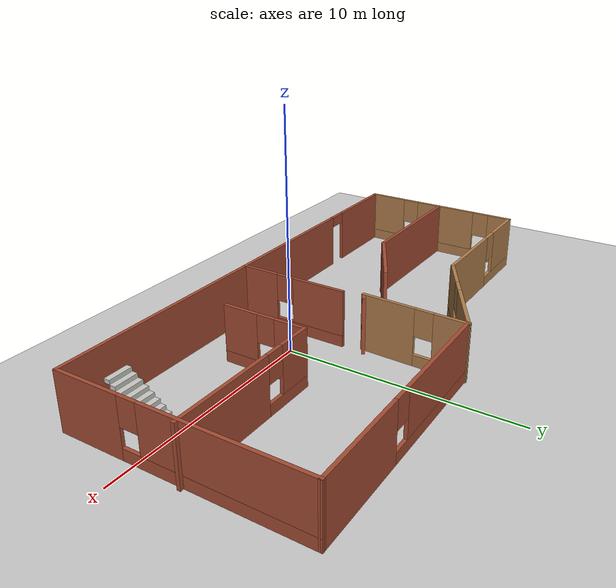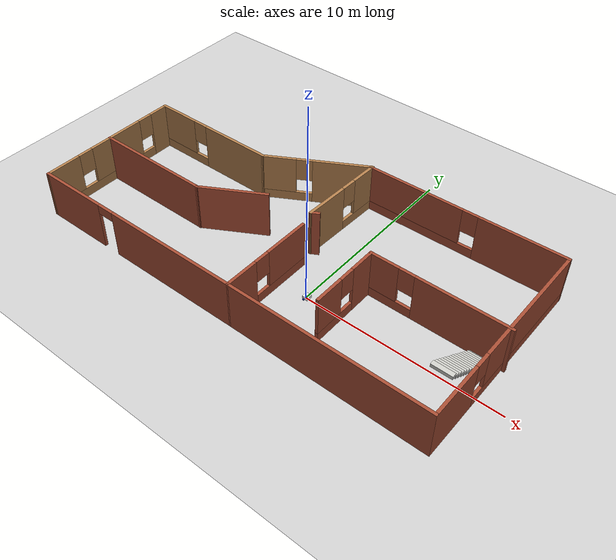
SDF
<sdf version="1.7">
 <world name="default">
  <light name="sun" type="directional">
   <pose>0 0 10 0 -0 0</pose>
   <diffuse>0.8 0.8 0.8 1</diffuse>
   <specular>0.2 0.2 0.2 1</specular>
   <attenuation>
    <range>1000</range>
    <constant>0.9</constant>
    <linear>0.01</linear>
    <quadratic>0.001</quadratic>
   </attenuation>
   <direction>-0.5 0.1 -0.9</direction>
   <spot><inner_angle>0</inner_angle><outer_angle>0</outer_angle><falloff>0</falloff></spot>
  </light>
  <model name="ground_plane">
   <static>1</static>
   <link name="link">
    <collision name="collision">
     <geometry><plane><normal>0 0 1</normal><size>100 100</size></plane></geometry>
     <surface>
      <contact><collide_bitmask>65535</collide_bitmask></contact>
      <friction><ode><mu>100</mu><mu2>50</mu2></ode></friction>
     </surface>
    </collision>
    <visual name="visual">
     <cast_shadows>0</cast_shadows>
     <geometry><plane><normal>0 0 1</normal><size>100 100</size></plane></geometry>
     <material>
      <script><uri>file://media/materials/scripts/gazebo.material</uri><name>Gazebo/Grey</name></script>
     </material>
    </visual>
   </link>
  </model>
  <gravity>0 0 -9.8</gravity>
  <magnetic_field>6e-06 2.3e-05 -4.2e-05</magnetic_field>
  <atmosphere type="adiabatic"/>
  <physics type="ode">
   <max_step_size>0.001</max_step_size>
   <real_time_factor>1</real_time_factor>
   <real_time_update_rate>1000</real_time_update_rate>
  </physics>
  <scene><ambient>0.4 0.4 0.4 1</ambient><background>0.7 0.7 0.7 1</background><shadows>1</shadows></scene>
  <audio><device>default</device></audio>
  <spherical_coordinates>
   <surface_model>EARTH_WGS84</surface_model>
   <latitude_deg>0</latitude_deg>
   <longitude_deg>0</longitude_deg>
   <elevation>0</elevation>
   <heading_deg>0</heading_deg>
  </spherical_coordinates>
  <model name="my_bot">
   <link name="base_link">
    <inertial>
     <pose>0.065 0 0.0625 0 -0 0</pose>
     <mass>0.6</mass>
     <inertia>
      <ixx>0.00525625</ixx>
      <ixy>0</ixy>
      <ixz>0.0005625</ixz>
      <iyy>0.00593125</iyy>
      <iyz>0</iyz>
      <izz>0.008275</izz>
     </inertia>
    </inertial>
    <collision name="base_link_fixed_joint_lump__chassis_collision">
     <pose>0.05 0 0.075 0 -0 0</pose>
     <geometry><box><size>0.3 0.3 0.15</size></box></geometry>
    </collision>
    <collision name="base_link_fixed_joint_lump__caster_wheel_collision_1">
     <pose>0.14 0 0 0 -0 0</pose>
     <geometry><sphere><radius>0.05</radius></sphere></geometry>
     <surface><friction><ode><mu>0.001</mu><mu2>0.001</mu2></ode></friction></surface>
    </collision>
    <visual name="base_link_fixed_joint_lump__chassis_visual">
     <pose>0.05 0 0.075 0 -0 0</pose>
     <geometry><box><size>0.3 0.3 0.15</size></box></geometry>
     <material>
      <script><name>Gazebo/White</name><uri>file://media/materials/scripts/gazebo.material</uri></script>
     </material>
    </visual>
    <visual name="base_link_fixed_joint_lump__caster_wheel_visual_1">
     <pose>0.14 0 0 0 -0 0</pose>
     <geometry><sphere><radius>0.05</radius></sphere></geometry>
     <material>
      <script><name>Gazebo/Black</name><uri>file://media/materials/scripts/gazebo.material</uri></script>
     </material>
    </visual>
   </link>
   <joint name="left_wheel_joint" type="revolute">
    <pose relative_to="base_link">0 0.175 0 -1.5708 0 0</pose>
    <parent>base_link</parent>
    <child>left_wheel</child>
    <axis>
     <xyz>0 0 1</xyz>
     <limit><lower>-1e+16</lower><upper>1e+16</upper></limit>
     <dynamics><spring_reference>0</spring_reference><spring_stiffness>0</spring_stiffness></dynamics>
    </axis>
   </joint>
   <link name="left_wheel">
    <pose relative_to="left_wheel_joint">0 0 0 0 -0 0</pose>
    <inertial>
     <mass>0.1</mass>
     <inertia>
      <ixx>7.58333e-05</ixx>
      <ixy>0</ixy>
      <ixz>0</ixz>
      <iyy>7.58333e-05</iyy>
      <iyz>0</iyz>
      <izz>0.000125</izz>
     </inertia>
    </inertial>
    <collision name="left_wheel_collision">
     <geometry><cylinder><length>0.04</length><radius>0.05</radius></cylinder></geometry>
    </collision>
    <visual name="left_wheel_visual">
     <geometry><cylinder><length>0.04</length><radius>0.05</radius></cylinder></geometry>
     <material>
      <script><name>Gazebo/Blue</name><uri>file://media/materials/scripts/gazebo.material</uri></script>
     </material>
    </visual>
   </link>
   <joint name="right_wheel_joint" type="revolute">
    <pose relative_to="base_link">0 -0.175 0 1.5708 -0 0</pose>
    <parent>base_link</parent>
    <child>right_wheel</child>
    <axis>
     <xyz>0 0 -1</xyz>
     <limit><lower>-1e+16</lower><upper>1e+16</upper></limit>
     <dynamics><spring_reference>0</spring_reference><spring_stiffness>0</spring_stiffness></dynamics>
    </axis>
   </joint>
   <link name="right_wheel">
    <pose relative_to="right_wheel_joint">0 0 0 0 -0 0</pose>
    <inertial>
     <mass>0.1</mass>
     <inertia>
      <ixx>7.58333e-05</ixx>
      <ixy>0</ixy>
      <ixz>0</ixz>
      <iyy>7.58333e-05</iyy>
      <iyz>0</iyz>
      <izz>0.000125</izz>
     </inertia>
    </inertial>
    <collision name="right_wheel_collision">
     <geometry><cylinder><length>0.04</length><radius>0.05</radius></cylinder></geometry>
    </collision>
    <visual name="right_wheel_visual">
     <geometry><cylinder><length>0.04</length><radius>0.05</radius></cylinder></geometry>
     <material>
      <script><name>Gazebo/Blue</name><uri>file://media/materials/scripts/gazebo.material</uri></script>
     </material>
    </visual>
   </link>
   <static>0</static>
   <plugin name="diff_drive" filename="libgazebo_ros_diff_drive.so">
    <left_joint>left_wheel_joint</left_joint>
    <right_joint>right_wheel_joint</right_joint>
    <wheel_separation>0.35</wheel_separation>
    <wheel_diameter>0.1</wheel_diameter>
    <max_wheel_torque>200</max_wheel_torque>
    <max_wheel_acceleration>10.0</max_wheel_acceleration>
    <odometry_frame>odom</odometry_frame>
    <robot_base_frame>base_link</robot_base_frame>
    <publish_odom>1</publish_odom>
    <publish_odom_tf>1</publish_odom_tf>
    <publish_wheel_tf>1</publish_wheel_tf>
   </plugin>
   <pose>0.001815 6e-06 0.05 -0 1e-06 -4e-05</pose>
  </model>
  <model name="Untitled">
   <pose>-2.14088 1.8279 0 0 -0 0</pose>
   <link name="Stairs_0">
    <visual name="Stairs_0_Visual_0">
     <pose>9.84446 0.033884 0.083333 0 -0 0</pose>
     <geometry><box><size>1 0.233333 0.166667</size></box></geometry>
     <material>
      <script><uri>file://media/materials/scripts/gazebo.material</uri><name>Gazebo/CeilingTiled</name></script>
      <ambient>1 1 1 1</ambient>
     </material>
     <meta><layer>0</layer></meta>
    </visual>
    <collision name="Stairs_0_Collision_0">
     <geometry><box><size>1 0.233333 0.166667</size></box></geometry>
     <pose>9.84446 0.033884 0.083333 0 -0 0</pose>
    </collision>
    <visual name="Stairs_0_Visual_1">
     <pose>9.84446 -0.19945 0.25 0 -0 0</pose>
     <geometry><box><size>1 0.233333 0.166667</size></box></geometry>
     <material>
      <script><uri>file://media/materials/scripts/gazebo.material</uri><name>Gazebo/CeilingTiled</name></script>
      <ambient>1 1 1 1</ambient>
     </material>
     <meta><layer>0</layer></meta>
    </visual>
    <collision name="Stairs_0_Collision_1">
     <geometry><box><size>1 0.233333 0.166667</size></box></geometry>
     <pose>9.84446 -0.19945 0.25 0 -0 0</pose>
    </collision>
    <visual name="Stairs_0_Visual_2">
     <pose>9.84446 -0.432783 0.416667 0 -0 0</pose>
     <geometry><box><size>1 0.233333 0.166667</size></box></geometry>
     <material>
      <script><uri>file://media/materials/scripts/gazebo.material</uri><name>Gazebo/CeilingTiled</name></script>
      <ambient>1 1 1 1</ambient>
     </material>
     <meta><layer>0</layer></meta>
    </visual>
    <collision name="Stairs_0_Collision_2">
     <geometry><box><size>1 0.233333 0.166667</size></box></geometry>
     <pose>9.84446 -0.432783 0.416667 0 -0 0</pose>
    </collision>
    <visual name="Stairs_0_Visual_3">
     <pose>9.84446 -0.666116 0.583333 0 -0 0</pose>
     <geometry><box><size>1 0.233333 0.166667</size></box></geometry>
     <material>
      <script><uri>file://media/materials/scripts/gazebo.material</uri><name>Gazebo/CeilingTiled</name></script>
      <ambient>1 1 1 1</ambient>
     </material>
     <meta><layer>0</layer></meta>
    </visual>
    <collision name="Stairs_0_Collision_3">
     <geometry><box><size>1 0.233333 0.166667</size></box></geometry>
     <pose>9.84446 -0.666116 0.583333 0 -0 0</pose>
    </collision>
    <visual name="Stairs_0_Visual_4">
     <pose>9.84446 -0.899449 0.75 0 -0 0</pose>
     <geometry><box><size>1 0.233333 0.166667</size></box></geometry>
     <material>
      <script><uri>file://media/materials/scripts/gazebo.material</uri><name>Gazebo/CeilingTiled</name></script>
      <ambient>1 1 1 1</ambient>
     </material>
     <meta><layer>0</layer></meta>
    </visual>
    <collision name="Stairs_0_Collision_4">
     <geometry><box><size>1 0.233333 0.166667</size></box></geometry>
     <pose>9.84446 -0.899449 0.75 0 -0 0</pose>
    </collision>
    <visual name="Stairs_0_Visual_5">
     <pose>9.84446 -1.13278 0.916667 0 -0 0</pose>
     <geometry><box><size>1 0.233333 0.166667</size></box></geometry>
     <material>
      <script><uri>file://media/materials/scripts/gazebo.material</uri><name>Gazebo/CeilingTiled</name></script>
      <ambient>1 1 1 1</ambient>
     </material>
     <meta><layer>0</layer></meta>
    </visual>
    <collision name="Stairs_0_Collision_5">
     <geometry><box><size>1 0.233333 0.166667</size></box></geometry>
     <pose>9.84446 -1.13278 0.916667 0 -0 0</pose>
    </collision>
    <visual name="Stairs_0_Visual_6">
     <pose>9.84446 -1.36612 1.08333 0 -0 0</pose>
     <geometry><box><size>1 0.233333 0.166667</size></box></geometry>
     <material>
      <script><uri>file://media/materials/scripts/gazebo.material</uri><name>Gazebo/CeilingTiled</name></script>
      <ambient>1 1 1 1</ambient>
     </material>
     <meta><layer>0</layer></meta>
    </visual>
    <collision name="Stairs_0_Collision_6">
     <geometry><box><size>1 0.233333 0.166667</size></box></geometry>
     <pose>9.84446 -1.36612 1.08333 0 -0 0</pose>
    </collision>
    <visual name="Stairs_0_Visual_7">
     <pose>9.84446 -1.59945 1.25 0 -0 0</pose>
     <geometry><box><size>1 0.233333 0.166667</size></box></geometry>
     <material>
      <script><uri>file://media/materials/scripts/gazebo.material</uri><name>Gazebo/CeilingTiled</name></script>
      <ambient>1 1 1 1</ambient>
     </material>
     <meta><layer>0</layer></meta>
    </visual>
    <collision name="Stairs_0_Collision_7">
     <geometry><box><size>1 0.233333 0.166667</size></box></geometry>
     <pose>9.84446 -1.59945 1.25 0 -0 0</pose>
    </collision>
    <visual name="Stairs_0_Visual_8">
     <pose>9.84446 -1.83278 1.41667 0 -0 0</pose>
     <geometry><box><size>1 0.233333 0.166667</size></box></geometry>
     <material>
      <script><uri>file://media/materials/scripts/gazebo.material</uri><name>Gazebo/CeilingTiled</name></script>
      <ambient>1 1 1 1</ambient>
     </material>
     <meta><layer>0</layer></meta>
    </visual>
    <collision name="Stairs_0_Collision_8">
     <geometry><box><size>1 0.233333 0.166667</size></box></geometry>
     <pose>9.84446 -1.83278 1.41667 0 -0 0</pose>
    </collision>
    <visual name="Stairs_0_Visual_9">
     <pose>9.84446 -2.06612 1.58333 0 -0 0</pose>
     <geometry><box><size>1 0.233333 0.166667</size></box></geometry>
     <material>
      <script><uri>file://media/materials/scripts/gazebo.material</uri><name>Gazebo/CeilingTiled</name></script>
      <ambient>1 1 1 1</ambient>
     </material>
     <meta><layer>0</layer></meta>
    </visual>
    <collision name="Stairs_0_Collision_9">
     <geometry><box><size>1 0.233333 0.166667</size></box></geometry>
     <pose>9.84446 -2.06612 1.58333 0 -0 0</pose>
    </collision>
    <visual name="Stairs_0_Visual_10">
     <pose>9.84446 -2.29945 1.75 0 -0 0</pose>
     <geometry><box><size>1 0.233333 0.166667</size></box></geometry>
     <material>
      <script><uri>file://media/materials/scripts/gazebo.material</uri><name>Gazebo/CeilingTiled</name></script>
      <ambient>1 1 1 1</ambient>
     </material>
     <meta><layer>0</layer></meta>
    </visual>
    <collision name="Stairs_0_Collision_10">
     <geometry><box><size>1 0.233333 0.166667</size></box></geometry>
     <pose>9.84446 -2.29945 1.75 0 -0 0</pose>
    </collision>
    <visual name="Stairs_0_Visual_11">
     <pose>9.84446 -2.53278 1.91667 0 -0 0</pose>
     <geometry><box><size>1 0.233333 0.166667</size></box></geometry>
     <material>
      <script><uri>file://media/materials/scripts/gazebo.material</uri><name>Gazebo/CeilingTiled</name></script>
      <ambient>1 1 1 1</ambient>
     </material>
     <meta><layer>0</layer></meta>
    </visual>
    <collision name="Stairs_0_Collision_11">
     <geometry><box><size>1 0.233333 0.166667</size></box></geometry>
     <pose>9.84446 -2.53278 1.91667 0 -0 0</pose>
    </collision>
    <visual name="Stairs_0_Visual_12">
     <pose>9.84446 -2.76612 2.08333 0 -0 0</pose>
     <geometry><box><size>1 0.233333 0.166667</size></box></geometry>
     <material>
      <script><uri>file://media/materials/scripts/gazebo.material</uri><name>Gazebo/CeilingTiled</name></script>
      <ambient>1 1 1 1</ambient>
     </material>
     <meta><layer>0</layer></meta>
    </visual>
    <collision name="Stairs_0_Collision_12">
     <geometry><box><size>1 0.233333 0.166667</size></box></geometry>
     <pose>9.84446 -2.76612 2.08333 0 -0 0</pose>
    </collision>
    <visual name="Stairs_0_Visual_13">
     <pose>9.84446 -2.99945 2.25 0 -0 0</pose>
     <geometry><box><size>1 0.233333 0.166667</size></box></geometry>
     <material>
      <script><uri>file://media/materials/scripts/gazebo.material</uri><name>Gazebo/CeilingTiled</name></script>
      <ambient>1 1 1 1</ambient>
     </material>
     <meta><layer>0</layer></meta>
    </visual>
    <collision name="Stairs_0_Collision_13">
     <geometry><box><size>1 0.233333 0.166667</size></box></geometry>
     <pose>9.84446 -2.99945 2.25 0 -0 0</pose>
    </collision>
    <visual name="Stairs_0_Visual_14">
     <pose>9.84446 -3.23278 2.41667 0 -0 0</pose>
     <geometry><box><size>1 0.233333 0.166667</size></box></geometry>
     <material>
      <script><uri>file://media/materials/scripts/gazebo.material</uri><name>Gazebo/CeilingTiled</name></script>
      <ambient>1 1 1 1</ambient>
     </material>
     <meta><layer>0</layer></meta>
    </visual>
    <collision name="Stairs_0_Collision_14">
     <geometry><box><size>1 0.233333 0.166667</size></box></geometry>
     <pose>9.84446 -3.23278 2.41667 0 -0 0</pose>
    </collision>
   </link>
   <link name="Wall_0">
    <collision name="Wall_0_Collision">
     <geometry><box><size>10.25 0.15 2.5</size></box></geometry>
     <pose>0 0 1.25 0 -0 0</pose>
    </collision>
    <visual name="Wall_0_Visual">
     <pose>0 0 1.25 0 -0 0</pose>
     <geometry><box><size>10.25 0.15 2.5</size></box></geometry>
     <material>
      <script><uri>file://media/materials/scripts/gazebo.material</uri><name>Gazebo/Bricks</name></script>
      <ambient>1 1 1 1</ambient>
     </material>
     <meta><layer>0</layer></meta>
    </visual>
    <pose>5.71717 -5.14387 0 0 -0 0</pose>
   </link>
   <link name="Wall_13">
    <pose>-7.48846 2.39298 0 0 -0 3.14159</pose>
    <visual name="Wall_13_Visual_0">
     <pose>-1.54779 0 1.25 0 -0 0</pose>
     <geometry><box><size>3.90442 0.15 2.5</size></box></geometry>
     <material>
      <script><uri>file://media/materials/scripts/gazebo.material</uri><name>Gazebo/Wood</name></script>
      <ambient>1 1 1 1</ambient>
     </material>
     <meta><layer>0</layer></meta>
    </visual>
    <collision name="Wall_13_Collision_0">
     <geometry><box><size>3.90442 0.15 2.5</size></box></geometry>
     <pose>-1.54779 0 1.25 0 -0 0</pose>
    </collision>
    <visual name="Wall_13_Visual_1">
     <pose>1.95221 0 0.25 0 -0 0</pose>
     <geometry><box><size>3.09558 0.15 0.5</size></box></geometry>
     <material>
      <script><uri>file://media/materials/scripts/gazebo.material</uri><name>Gazebo/Wood</name></script>
      <ambient>1 1 1 1</ambient>
     </material>
     <meta><layer>0</layer></meta>
    </visual>
    <collision name="Wall_13_Collision_1">
     <geometry><box><size>3.09558 0.15 0.5</size></box></geometry>
     <pose>1.95221 0 0.25 0 -0 0</pose>
    </collision>
    <visual name="Wall_13_Visual_2">
     <pose>2.35221 0 1.5 0 -0 0</pose>
     <geometry><box><size>2.29558 0.15 2</size></box></geometry>
     <material>
      <script><uri>file://media/materials/scripts/gazebo.material</uri><name>Gazebo/Wood</name></script>
      <ambient>1 1 1 1</ambient>
     </material>
     <meta><layer>0</layer></meta>
    </visual>
    <collision name="Wall_13_Collision_2">
     <geometry><box><size>2.29558 0.15 2</size></box></geometry>
     <pose>2.35221 0 1.5 0 -0 0</pose>
    </collision>
    <visual name="Wall_13_Visual_3">
     <pose>0.804422 0 1.9 0 -0 0</pose>
     <geometry><box><size>0.8 0.15 1.2</size></box></geometry>
     <material>
      <script><uri>file://media/materials/scripts/gazebo.material</uri><name>Gazebo/Wood</name></script>
      <ambient>1 1 1 1</ambient>
     </material>
     <meta><layer>0</layer></meta>
    </visual>
    <collision name="Wall_13_Collision_3">
     <geometry><box><size>0.8 0.15 1.2</size></box></geometry>
     <pose>0.804422 0 1.9 0 -0 0</pose>
    </collision>
   </link>
   <link name="Wall_14">
    <pose>-10.9135 -1.40702 0 0 -0 -1.5708</pose>
    <visual name="Wall_14_Visual_0">
     <pose>-3.2986 0 1.25 0 -0 0</pose>
     <geometry><box><size>1.15281 0.15 2.5</size></box></geometry>
     <material>
      <script><uri>file://media/materials/scripts/gazebo.material</uri><name>Gazebo/Wood</name></script>
      <ambient>1 1 1 1</ambient>
     </material>
     <meta><layer>0</layer></meta>
    </visual>
    <collision name="Wall_14_Collision_0">
     <geometry><box><size>1.15281 0.15 2.5</size></box></geometry>
     <pose>-3.2986 0 1.25 0 -0 0</pose>
    </collision>
    <visual name="Wall_14_Visual_1">
     <pose>0.576405 0 0.25 0 -0 0</pose>
     <geometry><box><size>6.59719 0.15 0.5</size></box></geometry>
     <material>
      <script><uri>file://media/materials/scripts/gazebo.material</uri><name>Gazebo/Wood</name></script>
      <ambient>1 1 1 1</ambient>
     </material>
     <meta><layer>0</layer></meta>
    </visual>
    <collision name="Wall_14_Collision_1">
     <geometry><box><size>6.59719 0.15 0.5</size></box></geometry>
     <pose>0.576405 0 0.25 0 -0 0</pose>
    </collision>
    <visual name="Wall_14_Visual_2">
     <pose>-0.36935 0 1.5 0 -0 0</pose>
     <geometry><box><size>3.10568 0.15 2</size></box></geometry>
     <material>
      <script><uri>file://media/materials/scripts/gazebo.material</uri><name>Gazebo/Wood</name></script>
      <ambient>1 1 1 1</ambient>
     </material>
     <meta><layer>0</layer></meta>
    </visual>
    <collision name="Wall_14_Collision_2">
     <geometry><box><size>3.10568 0.15 2</size></box></geometry>
     <pose>-0.36935 0 1.5 0 -0 0</pose>
    </collision>
    <visual name="Wall_14_Visual_3">
     <pose>2.92925 0 1.5 0 -0 0</pose>
     <geometry><box><size>1.89151 0.15 2</size></box></geometry>
     <material>
      <script><uri>file://media/materials/scripts/gazebo.material</uri><name>Gazebo/Wood</name></script>
      <ambient>1 1 1 1</ambient>
     </material>
     <meta><layer>0</layer></meta>
    </visual>
    <collision name="Wall_14_Collision_3">
     <geometry><box><size>1.89151 0.15 2</size></box></geometry>
     <pose>2.92925 0 1.5 0 -0 0</pose>
    </collision>
    <visual name="Wall_14_Visual_4">
     <pose>-2.32219 0 1.9 0 -0 0</pose>
     <geometry><box><size>0.8 0.15 1.2</size></box></geometry>
     <material>
      <script><uri>file://media/materials/scripts/gazebo.material</uri><name>Gazebo/Wood</name></script>
      <ambient>1 1 1 1</ambient>
     </material>
     <meta><layer>0</layer></meta>
    </visual>
    <collision name="Wall_14_Collision_4">
     <geometry><box><size>0.8 0.15 1.2</size></box></geometry>
     <pose>-2.32219 0 1.9 0 -0 0</pose>
    </collision>
    <visual name="Wall_14_Visual_5">
     <pose>1.58349 0 1.9 0 -0 0</pose>
     <geometry><box><size>0.8 0.15 1.2</size></box></geometry>
     <material>
      <script><uri>file://media/materials/scripts/gazebo.material</uri><name>Gazebo/Wood</name></script>
      <ambient>1 1 1 1</ambient>
     </material>
     <meta><layer>0</layer></meta>
    </visual>
    <collision name="Wall_14_Collision_5">
     <geometry><box><size>0.8 0.15 1.2</size></box></geometry>
     <pose>1.58349 0 1.9 0 -0 0</pose>
    </collision>
   </link>
   <link name="Wall_15">
    <pose>-5.12315 -5.17544 0 0 -0 0.005454</pose>
    <visual name="Wall_15_Visual_0">
     <pose>-4.02045 0 1.25 0 -0 0</pose>
     <geometry><box><size>3.68992 0.15 2.5</size></box></geometry>
     <material>
      <script><uri>file://media/materials/scripts/gazebo.material</uri><name>Gazebo/Bricks</name></script>
      <ambient>1 1 1 1</ambient>
     </material>
     <meta><layer>0</layer></meta>
    </visual>
    <collision name="Wall_15_Collision_0">
     <geometry><box><size>3.68992 0.15 2.5</size></box></geometry>
     <pose>-4.02045 0 1.25 0 -0 0</pose>
    </collision>
    <visual name="Wall_15_Visual_1">
     <pose>2.29496 0 1.25 0 -0 0</pose>
     <geometry><box><size>7.14089 0.15 2.5</size></box></geometry>
     <material>
      <script><uri>file://media/materials/scripts/gazebo.material</uri><name>Gazebo/Bricks</name></script>
      <ambient>1 1 1 1</ambient>
     </material>
     <meta><layer>0</layer></meta>
    </visual>
    <collision name="Wall_15_Collision_1">
     <geometry><box><size>7.14089 0.15 2.5</size></box></geometry>
     <pose>2.29496 0 1.25 0 -0 0</pose>
    </collision>
    <visual name="Wall_15_Visual_2">
     <pose>-1.72549 0 2.25 0 -0 0</pose>
     <geometry><box><size>0.9 0.15 0.5</size></box></geometry>
     <material>
      <script><uri>file://media/materials/scripts/gazebo.material</uri><name>Gazebo/Bricks</name></script>
      <ambient>1 1 1 1</ambient>
     </material>
     <meta><layer>0</layer></meta>
    </visual>
    <collision name="Wall_15_Collision_2">
     <geometry><box><size>0.9 0.15 0.5</size></box></geometry>
     <pose>-1.72549 0 2.25 0 -0 0</pose>
    </collision>
   </link>
   <link name="Wall_16">
    <pose>0.667173 -2.71887 0 0 -0 1.5708</pose>
    <visual name="Wall_16_Visual_0">
     <pose>-1.61258 0 1.25 0 -0 0</pose>
     <geometry><box><size>1.77485 0.15 2.5</size></box></geometry>
     <material>
      <script><uri>file://media/materials/scripts/gazebo.material</uri><name>Gazebo/Bricks</name></script>
      <ambient>1 1 1 1</ambient>
     </material>
     <meta><layer>0</layer></meta>
    </visual>
    <collision name="Wall_16_Collision_0">
     <geometry><box><size>1.77485 0.15 2.5</size></box></geometry>
     <pose>-1.61258 0 1.25 0 -0 0</pose>
    </collision>
    <visual name="Wall_16_Visual_1">
     <pose>0.887425 0 0.25 0 -0 0</pose>
     <geometry><box><size>3.22515 0.15 0.5</size></box></geometry>
     <material>
      <script><uri>file://media/materials/scripts/gazebo.material</uri><name>Gazebo/Bricks</name></script>
      <ambient>1 1 1 1</ambient>
     </material>
     <meta><layer>0</layer></meta>
    </visual>
    <collision name="Wall_16_Collision_1">
     <geometry><box><size>3.22515 0.15 0.5</size></box></geometry>
     <pose>0.887425 0 0.25 0 -0 0</pose>
    </collision>
    <visual name="Wall_16_Visual_2">
     <pose>1.28743 0 1.5 0 -0 0</pose>
     <geometry><box><size>2.42515 0.15 2</size></box></geometry>
     <material>
      <script><uri>file://media/materials/scripts/gazebo.material</uri><name>Gazebo/Bricks</name></script>
      <ambient>1 1 1 1</ambient>
     </material>
     <meta><layer>0</layer></meta>
    </visual>
    <collision name="Wall_16_Collision_2">
     <geometry><box><size>2.42515 0.15 2</size></box></geometry>
     <pose>1.28743 0 1.5 0 -0 0</pose>
    </collision>
    <visual name="Wall_16_Visual_3">
     <pose>-0.325151 0 1.9 0 -0 0</pose>
     <geometry><box><size>0.8 0.15 1.2</size></box></geometry>
     <material>
      <script><uri>file://media/materials/scripts/gazebo.material</uri><name>Gazebo/Bricks</name></script>
      <ambient>1 1 1 1</ambient>
     </material>
     <meta><layer>0</layer></meta>
    </visual>
    <collision name="Wall_16_Collision_3">
     <geometry><box><size>0.8 0.15 1.2</size></box></geometry>
     <pose>-0.325151 0 1.9 0 -0 0</pose>
    </collision>
   </link>
   <link name="Wall_18">
    <collision name="Wall_18_Collision">
     <geometry><box><size>0.5 0.15 2.5</size></box></geometry>
     <pose>0 0 1.25 0 -0 0</pose>
    </collision>
    <visual name="Wall_18_Visual">
     <pose>0 0 1.25 0 -0 0</pose>
     <geometry><box><size>0.5 0.15 2.5</size></box></geometry>
     <material>
      <script><uri>file://media/materials/scripts/gazebo.material</uri><name>Gazebo/Bricks</name></script>
      <ambient>1 1 1 1</ambient>
     </material>
     <meta><layer>0</layer></meta>
    </visual>
    <pose>0.584571 0.662391 0 0 -0 -2.61799</pose>
   </link>
   <link name="Wall_19">
    <pose>0.501394 2.82143 0 0 -0 1.54037</pose>
    <visual name="Wall_19_Visual_0">
     <pose>-1.13859 0 1.25 0 -0 0</pose>
     <geometry><box><size>2.36799 0.15 2.5</size></box></geometry>
     <material>
      <script><uri>file://media/materials/scripts/gazebo.material</uri><name>Gazebo/Wood</name></script>
      <ambient>1 1 1 1</ambient>
     </material>
     <meta><layer>0</layer></meta>
    </visual>
    <collision name="Wall_19_Collision_0">
     <geometry><box><size>2.36799 0.15 2.5</size></box></geometry>
     <pose>-1.13859 0 1.25 0 -0 0</pose>
    </collision>
    <visual name="Wall_19_Visual_1">
     <pose>1.18399 0 0.25 0 -0 0</pose>
     <geometry><box><size>2.27718 0.15 0.5</size></box></geometry>
     <material>
      <script><uri>file://media/materials/scripts/gazebo.material</uri><name>Gazebo/Wood</name></script>
      <ambient>1 1 1 1</ambient>
     </material>
     <meta><layer>0</layer></meta>
    </visual>
    <collision name="Wall_19_Collision_1">
     <geometry><box><size>2.27718 0.15 0.5</size></box></geometry>
     <pose>1.18399 0 0.25 0 -0 0</pose>
    </collision>
    <visual name="Wall_19_Visual_2">
     <pose>1.58399 0 1.5 0 -0 0</pose>
     <geometry><box><size>1.47718 0.15 2</size></box></geometry>
     <material>
      <script><uri>file://media/materials/scripts/gazebo.material</uri><name>Gazebo/Wood</name></script>
      <ambient>1 1 1 1</ambient>
     </material>
     <meta><layer>0</layer></meta>
    </visual>
    <collision name="Wall_19_Collision_2">
     <geometry><box><size>1.47718 0.15 2</size></box></geometry>
     <pose>1.58399 0 1.5 0 -0 0</pose>
    </collision>
    <visual name="Wall_19_Visual_3">
     <pose>0.445404 0 1.9 0 -0 0</pose>
     <geometry><box><size>0.8 0.15 1.2</size></box></geometry>
     <material>
      <script><uri>file://media/materials/scripts/gazebo.material</uri><name>Gazebo/Wood</name></script>
      <ambient>1 1 1 1</ambient>
     </material>
     <meta><layer>0</layer></meta>
    </visual>
    <collision name="Wall_19_Collision_3">
     <geometry><box><size>0.8 0.15 1.2</size></box></geometry>
     <pose>0.445404 0 1.9 0 -0 0</pose>
    </collision>
   </link>
   <link name="Wall_21">
    <pose>7.48951 0.166133 0 0 -0 3.14159</pose>
    <visual name="Wall_21_Visual_0">
     <pose>-1.17463 0 1.25 0 -0 0</pose>
     <geometry><box><size>4.65073 0.15 2.5</size></box></geometry>
     <material>
      <script><uri>file://media/materials/scripts/gazebo.material</uri><name>Gazebo/Bricks</name></script>
      <ambient>1 1 1 1</ambient>
     </material>
     <meta><layer>0</layer></meta>
    </visual>
    <collision name="Wall_21_Collision_0">
     <geometry><box><size>4.65073 0.15 2.5</size></box></geometry>
     <pose>-1.17463 0 1.25 0 -0 0</pose>
    </collision>
    <visual name="Wall_21_Visual_1">
     <pose>2.32537 0 0.25 0 -0 0</pose>
     <geometry><box><size>2.34927 0.15 0.5</size></box></geometry>
     <material>
      <script><uri>file://media/materials/scripts/gazebo.material</uri><name>Gazebo/Bricks</name></script>
      <ambient>1 1 1 1</ambient>
     </material>
     <meta><layer>0</layer></meta>
    </visual>
    <collision name="Wall_21_Collision_1">
     <geometry><box><size>2.34927 0.15 0.5</size></box></geometry>
     <pose>2.32537 0 0.25 0 -0 0</pose>
    </collision>
    <visual name="Wall_21_Visual_2">
     <pose>2.72537 0 1.5 0 -0 0</pose>
     <geometry><box><size>1.54927 0.15 2</size></box></geometry>
     <material>
      <script><uri>file://media/materials/scripts/gazebo.material</uri><name>Gazebo/Bricks</name></script>
      <ambient>1 1 1 1</ambient>
     </material>
     <meta><layer>0</layer></meta>
    </visual>
    <collision name="Wall_21_Collision_2">
     <geometry><box><size>1.54927 0.15 2</size></box></geometry>
     <pose>2.72537 0 1.5 0 -0 0</pose>
    </collision>
    <visual name="Wall_21_Visual_3">
     <pose>1.55073 0 1.9 0 -0 0</pose>
     <geometry><box><size>0.8 0.15 1.2</size></box></geometry>
     <material>
      <script><uri>file://media/materials/scripts/gazebo.material</uri><name>Gazebo/Bricks</name></script>
      <ambient>1 1 1 1</ambient>
     </material>
     <meta><layer>0</layer></meta>
    </visual>
    <collision name="Wall_21_Collision_3">
     <geometry><box><size>0.8 0.15 1.2</size></box></geometry>
     <pose>1.55073 0 1.9 0 -0 0</pose>
    </collision>
   </link>
   <link name="Wall_22">
    <pose>4.06451 -1.63387 0 0 -0 -1.5708</pose>
    <visual name="Wall_22_Visual_0">
     <pose>-1.18146 0 1.25 0 -0 0</pose>
     <geometry><box><size>1.38708 0.15 2.5</size></box></geometry>
     <material>
      <script><uri>file://media/materials/scripts/gazebo.material</uri><name>Gazebo/Bricks</name></script>
      <ambient>1 1 1 1</ambient>
     </material>
     <meta><layer>0</layer></meta>
    </visual>
    <collision name="Wall_22_Collision_0">
     <geometry><box><size>1.38708 0.15 2.5</size></box></geometry>
     <pose>-1.18146 0 1.25 0 -0 0</pose>
    </collision>
    <visual name="Wall_22_Visual_1">
     <pose>0.69354 0 0.25 0 -0 0</pose>
     <geometry><box><size>2.36292 0.15 0.5</size></box></geometry>
     <material>
      <script><uri>file://media/materials/scripts/gazebo.material</uri><name>Gazebo/Bricks</name></script>
      <ambient>1 1 1 1</ambient>
     </material>
     <meta><layer>0</layer></meta>
    </visual>
    <collision name="Wall_22_Collision_1">
     <geometry><box><size>2.36292 0.15 0.5</size></box></geometry>
     <pose>0.69354 0 0.25 0 -0 0</pose>
    </collision>
    <visual name="Wall_22_Visual_2">
     <pose>1.09354 0 1.5 0 -0 0</pose>
     <geometry><box><size>1.56292 0.15 2</size></box></geometry>
     <material>
      <script><uri>file://media/materials/scripts/gazebo.material</uri><name>Gazebo/Bricks</name></script>
      <ambient>1 1 1 1</ambient>
     </material>
     <meta><layer>0</layer></meta>
    </visual>
    <collision name="Wall_22_Collision_2">
     <geometry><box><size>1.56292 0.15 2</size></box></geometry>
     <pose>1.09354 0 1.5 0 -0 0</pose>
    </collision>
    <visual name="Wall_22_Visual_3">
     <pose>-0.08792 0 1.9 0 -0 0</pose>
     <geometry><box><size>0.8 0.15 1.2</size></box></geometry>
     <material>
      <script><uri>file://media/materials/scripts/gazebo.material</uri><name>Gazebo/Bricks</name></script>
      <ambient>1 1 1 1</ambient>
     </material>
     <meta><layer>0</layer></meta>
    </visual>
    <collision name="Wall_22_Collision_3">
     <geometry><box><size>0.8 0.15 1.2</size></box></geometry>
     <pose>-0.08792 0 1.9 0 -0 0</pose>
    </collision>
   </link>
   <link name="Wall_27">
    <collision name="Wall_27_Collision">
     <geometry><box><size>6.25 0.15 2.5</size></box></geometry>
     <pose>0 0 1.25 0 -0 0</pose>
    </collision>
    <visual name="Wall_27_Visual">
     <pose>0 0 1.25 0 -0 0</pose>
     <geometry><box><size>6.25 0.15 2.5</size></box></geometry>
     <material>
      <script><uri>file://media/materials/scripts/gazebo.material</uri><name>Gazebo/Bricks</name></script>
      <ambient>1 1 1 1</ambient>
     </material>
     <meta><layer>0</layer></meta>
    </visual>
    <pose>-7.86451 -1.38544 0 0 -0 0</pose>
   </link>
   <link name="Wall_28">
    <collision name="Wall_28_Collision">
     <geometry><box><size>3.5 0.15 2.5</size></box></geometry>
     <pose>0 0 1.25 0 -0 0</pose>
    </collision>
    <visual name="Wall_28_Visual">
     <pose>0 0 1.25 0 -0 0</pose>
     <geometry><box><size>3.5 0.15 2.5</size></box></geometry>
     <material>
      <script><uri>file://media/materials/scripts/gazebo.material</uri><name>Gazebo/Bricks</name></script>
      <ambient>1 1 1 1</ambient>
     </material>
     <meta><layer>0</layer></meta>
    </visual>
    <pose>-3.36392 -0.54794 0 0 -0 0.523599</pose>
   </link>
   <link name="Wall_7">
    <pose>10.7672 0.031134 0 0 -0 1.5708</pose>
    <visual name="Wall_7_Visual_0">
     <pose>-3.8008 0 1.25 0 -0 0</pose>
     <geometry><box><size>2.8984 0.15 2.5</size></box></geometry>
     <material>
      <script><uri>file://media/materials/scripts/gazebo.material</uri><name>Gazebo/Bricks</name></script>
      <ambient>1 1 1 1</ambient>
     </material>
     <meta><layer>0</layer></meta>
    </visual>
    <collision name="Wall_7_Collision_0">
     <geometry><box><size>2.8984 0.15 2.5</size></box></geometry>
     <pose>-3.8008 0 1.25 0 -0 0</pose>
    </collision>
    <visual name="Wall_7_Visual_1">
     <pose>1.4492 0 0.25 0 -0 0</pose>
     <geometry><box><size>7.6016 0.15 0.5</size></box></geometry>
     <material>
      <script><uri>file://media/materials/scripts/gazebo.material</uri><name>Gazebo/Bricks</name></script>
      <ambient>1 1 1 1</ambient>
     </material>
     <meta><layer>0</layer></meta>
    </visual>
    <collision name="Wall_7_Collision_1">
     <geometry><box><size>7.6016 0.15 0.5</size></box></geometry>
     <pose>1.4492 0 0.25 0 -0 0</pose>
    </collision>
    <visual name="Wall_7_Visual_2">
     <pose>1.8492 0 1.5 0 -0 0</pose>
     <geometry><box><size>6.8016 0.15 2</size></box></geometry>
     <material>
      <script><uri>file://media/materials/scripts/gazebo.material</uri><name>Gazebo/Bricks</name></script>
      <ambient>1 1 1 1</ambient>
     </material>
     <meta><layer>0</layer></meta>
    </visual>
    <collision name="Wall_7_Collision_2">
     <geometry><box><size>6.8016 0.15 2</size></box></geometry>
     <pose>1.8492 0 1.5 0 -0 0</pose>
    </collision>
    <visual name="Wall_7_Visual_3">
     <pose>-1.9516 0 1.9 0 -0 0</pose>
     <geometry><box><size>0.8 0.15 1.2</size></box></geometry>
     <material>
      <script><uri>file://media/materials/scripts/gazebo.material</uri><name>Gazebo/Bricks</name></script>
      <ambient>1 1 1 1</ambient>
     </material>
     <meta><layer>0</layer></meta>
    </visual>
    <collision name="Wall_7_Collision_3">
     <geometry><box><size>0.8 0.15 1.2</size></box></geometry>
     <pose>-1.9516 0 1.9 0 -0 0</pose>
    </collision>
   </link>
   <link name="Wall_8">
    <pose>5.64824 5.11683 0 0 -0 -3.12415</pose>
    <visual name="Wall_8_Visual_0">
     <pose>-2.9705 0 1.25 0 -0 0</pose>
     <geometry><box><size>4.44842 0.15 2.5</size></box></geometry>
     <material>
      <script><uri>file://media/materials/scripts/gazebo.material</uri><name>Gazebo/Bricks</name></script>
      <ambient>1 1 1 1</ambient>
     </material>
     <meta><layer>0</layer></meta>
    </visual>
    <collision name="Wall_8_Collision_0">
     <geometry><box><size>4.44842 0.15 2.5</size></box></geometry>
     <pose>-2.9705 0 1.25 0 -0 0</pose>
    </collision>
    <visual name="Wall_8_Visual_1">
     <pose>2.22421 0 0.25 0 -0 0</pose>
     <geometry><box><size>5.941 0.15 0.5</size></box></geometry>
     <material>
      <script><uri>file://media/materials/scripts/gazebo.material</uri><name>Gazebo/Bricks</name></script>
      <ambient>1 1 1 1</ambient>
     </material>
     <meta><layer>0</layer></meta>
    </visual>
    <collision name="Wall_8_Collision_1">
     <geometry><box><size>5.941 0.15 0.5</size></box></geometry>
     <pose>2.22421 0 0.25 0 -0 0</pose>
    </collision>
    <visual name="Wall_8_Visual_2">
     <pose>2.62421 0 1.5 0 -0 0</pose>
     <geometry><box><size>5.141 0.15 2</size></box></geometry>
     <material>
      <script><uri>file://media/materials/scripts/gazebo.material</uri><name>Gazebo/Bricks</name></script>
      <ambient>1 1 1 1</ambient>
     </material>
     <meta><layer>0</layer></meta>
    </visual>
    <collision name="Wall_8_Collision_2">
     <geometry><box><size>5.141 0.15 2</size></box></geometry>
     <pose>2.62421 0 1.5 0 -0 0</pose>
    </collision>
    <visual name="Wall_8_Visual_3">
     <pose>-0.346287 0 1.9 0 -0 0</pose>
     <geometry><box><size>0.8 0.15 1.2</size></box></geometry>
     <material>
      <script><uri>file://media/materials/scripts/gazebo.material</uri><name>Gazebo/Bricks</name></script>
      <ambient>1 1 1 1</ambient>
     </material>
     <meta><layer>0</layer></meta>
    </visual>
    <collision name="Wall_8_Collision_3">
     <geometry><box><size>0.8 0.15 1.2</size></box></geometry>
     <pose>-0.346287 0 1.9 0 -0 0</pose>
    </collision>
   </link>
   <link name="Wall_9">
    <pose>-1.74685 3.73048 0 0 -0 -2.61799</pose>
    <visual name="Wall_9_Visual_0">
     <pose>-1.26983 0 1.25 0 -0 0</pose>
     <geometry><box><size>2.96033 0.15 2.5</size></box></geometry>
     <material>
      <script><uri>file://media/materials/scripts/gazebo.material</uri><name>Gazebo/Wood</name></script>
      <ambient>1 1 1 1</ambient>
     </material>
     <meta><layer>0</layer></meta>
    </visual>
    <collision name="Wall_9_Collision_0">
     <geometry><box><size>2.96033 0.15 2.5</size></box></geometry>
     <pose>-1.26983 0 1.25 0 -0 0</pose>
    </collision>
    <visual name="Wall_9_Visual_1">
     <pose>1.48017 0 0.25 0 -0 0</pose>
     <geometry><box><size>2.53967 0.15 0.5</size></box></geometry>
     <material>
      <script><uri>file://media/materials/scripts/gazebo.material</uri><name>Gazebo/Wood</name></script>
      <ambient>1 1 1 1</ambient>
     </material>
     <meta><layer>0</layer></meta>
    </visual>
    <collision name="Wall_9_Collision_1">
     <geometry><box><size>2.53967 0.15 0.5</size></box></geometry>
     <pose>1.48017 0 0.25 0 -0 0</pose>
    </collision>
    <visual name="Wall_9_Visual_2">
     <pose>1.88017 0 1.5 0 -0 0</pose>
     <geometry><box><size>1.73967 0.15 2</size></box></geometry>
     <material>
      <script><uri>file://media/materials/scripts/gazebo.material</uri><name>Gazebo/Wood</name></script>
      <ambient>1 1 1 1</ambient>
     </material>
     <meta><layer>0</layer></meta>
    </visual>
    <collision name="Wall_9_Collision_2">
     <geometry><box><size>1.73967 0.15 2</size></box></geometry>
     <pose>1.88017 0 1.5 0 -0 0</pose>
    </collision>
    <visual name="Wall_9_Visual_3">
     <pose>0.610333 0 1.9 0 -0 0</pose>
     <geometry><box><size>0.8 0.15 1.2</size></box></geometry>
     <material>
      <script><uri>file://media/materials/scripts/gazebo.material</uri><name>Gazebo/Wood</name></script>
      <ambient>1 1 1 1</ambient>
     </material>
     <meta><layer>0</layer></meta>
    </visual>
    <collision name="Wall_9_Collision_3">
     <geometry><box><size>0.8 0.15 1.2</size></box></geometry>
     <pose>0.610333 0 1.9 0 -0 0</pose>
    </collision>
   </link>
   <static>1</static>
  </model>
 </world>
</sdf>
